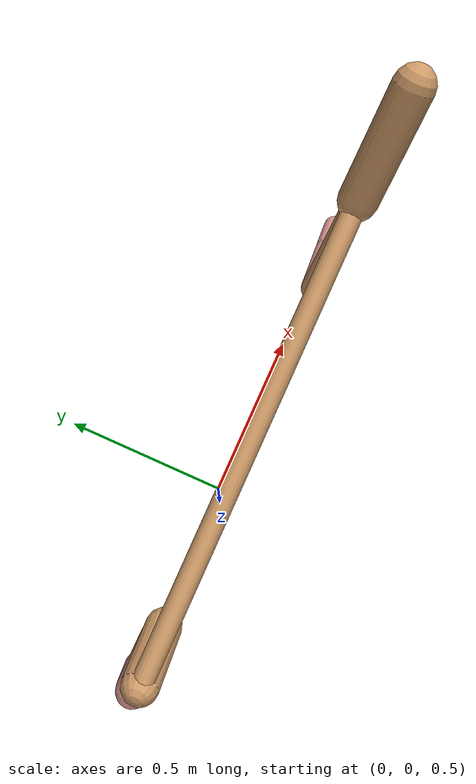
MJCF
<mujoco model="cheetah">
  <compiler angle="radian" coordinate="local" inertiafromgeom="true" settotalmass="14" />
  <default>
    <joint armature=".1" damping=".01" limited="true" solimplimit="0 .8 .03" solreflimit=".02 1" stiffness="8" />
    <geom conaffinity="0" condim="3" contype="1" friction="0.8 .1 .1" rgba="0.8 0.6 .4 1" solimp="0.0 0.8 0.01" solref="0.02 1" />
    <motor ctrllimited="true" ctrlrange="-1 1" />
  </default>
  <size nstack="300000" nuser_geom="1" />
  <option gravity="0 0 -9.81" timestep="0.01" />
  <worldbody>
    <body name="torso" pos="0.0 0.0 1.1229166786878955">
      <joint armature="0" axis="1 0 0" damping="0" limited="false" name="ignorex" pos="0 0 0" stiffness="0" type="slide" />
      <joint armature="0" axis="0 0 1" damping="0" limited="false" name="ignorez" pos="0 0 0" stiffness="0" type="slide" />
      <joint armature="0" axis="0 1 0" damping="0" limited="false" name="ignorey" pos="0 0 0" stiffness="0" type="hinge" />
      <geom fromto="-0.5 0.0 0.0 0.8418214058570807 0.0 0.0" name="torso" size="0.029082278049350135" type="capsule" />
      <geom axisangle="0 1 0 .87" name="head" pos="0.9418214058570807 0.0 0.1" size="0.05197934574422795 0.15" type="capsule" />

      <body name="bthigh" pos="-.5 0 0">
        <joint axis="0 1 0" damping="6" name="bthigh" pos="0 0 0" range="-.52 1.05" stiffness="240" type="hinge" />
        <geom axisangle="0 1 0 -3.8" name="bthigh" pos="0.0736853241882672 0.0 -0.09579092144474738" size="0.049769119057534124 0.1018407226812584" type="capsule" />
        <body name="bshin" pos="0.10737064837653441 0.0 -0.18158184288949475">
          <joint axis="0 1 0" damping="4.5" name="bshin" pos="0 0 0" range="-.785 .785" stiffness="180" type="hinge" />
          <geom axisangle="0 1 0 -2.03" name="bshin" pos="-0.1000660367126327 0.0 -0.05003301835631635" rgba="0.9 0.6 0.6 1" size="0.049769119057534124 0.10535247173923284" type="capsule" />
          <body name="bfoot" pos="-0.2001320734252654 0.0 -0.1000660367126327">
            <joint axis="0 1 0" damping="3" name="bfoot" pos="0 0 0" range="-.4 .785" stiffness="120" type="hinge" />
            <geom axisangle="0 1 0 -.27" name="bfoot" pos="0.021733017842598526 0.0 -0.0702700910244019" rgba="0.9 0.6 0.6 1" size="0.049769119057534124 0.06602088228991924" type="capsule" />
            <inertial mass="10" />
          </body>
        </body>
      </body>
      <body name="fthigh" pos="0.8418214058570808 0.0 0.0">
        <joint axis="0 1 0" damping="4.5" name="fthigh" pos="0 0 0" range="-1.5 0.8" stiffness="180" type="hinge" />
        <geom axisangle="0 1 0 .52" name="fthigh" pos="-0.09964612579500784 0.0 -0.17082192993429912" size="0.0322 0.19183673458733277" type="capsule" />
        <body name="fshin" pos="-0.19929225159001568 0.0 -0.34164385986859824">
          <joint axis="0 1 0" damping="3" name="fshin" pos="0 0 0" range="-1.2 1.1" stiffness="120" type="hinge" />
          <geom axisangle="0 1 0 -.6" name="fshin" pos="0.09245507778881717 0.0 -0.1280147230922084" rgba="0.9 0.6 0.6 1" size="0.0322 0.15289243508464115" type="capsule" />
          <body name="ffoot" pos="0.18491015557763435 0.0 -0.2560294461844168">
            <joint axis="0 1 0" damping="1.5" name="ffoot" pos="0 0 0" range="-3.1 -0.3" stiffness="60" type="hinge" />
            <geom axisangle="0 1 0 -.6" name="ffoot" pos="0.061745479408525095 0.0 -0.09604852352437238" rgba="0.9 0.6 0.6 1" size="0.0322 0.10096670241438567" type="capsule" />
            <inertial mass="10" />
          </body>
        </body>
      </body>
    </body>
  </worldbody>
  <actuator>
    <motor gear="120" joint="bthigh" name="bthigh" />
    <motor gear="90" joint="bshin" name="bshin" />
    <motor gear="60" joint="bfoot" name="bfoot" />
    <motor gear="120" joint="fthigh" name="fthigh" />
    <motor gear="60" joint="fshin" name="fshin" />
    <motor gear="30" joint="ffoot" name="ffoot" />
  </actuator>
</mujoco>
